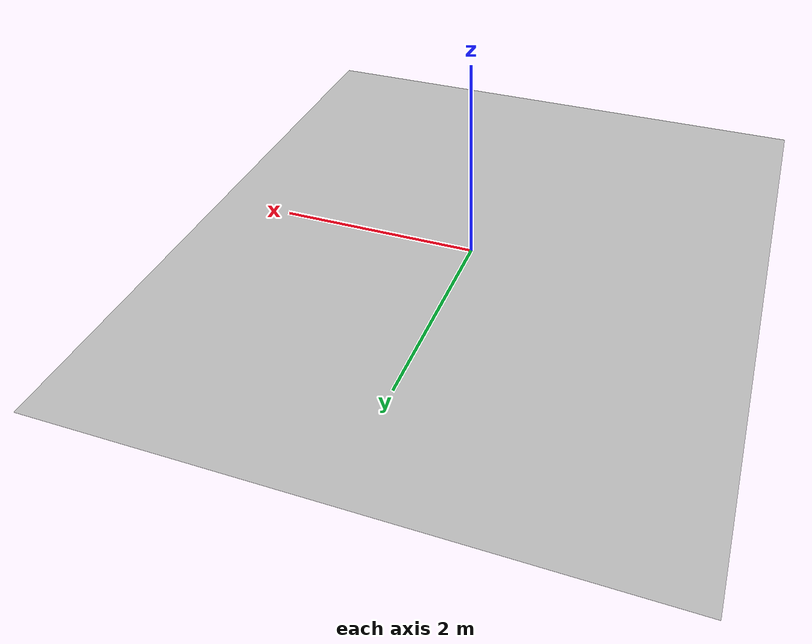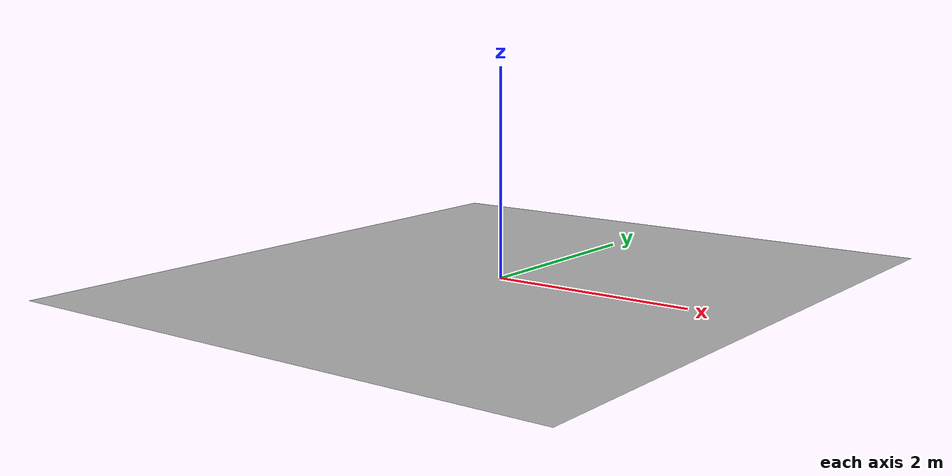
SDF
<?xml version="1.0" ?>
<sdf version="1.8">
  <model name="TrackMap">
    <static>true</static>
    <link name="TrackMap">
      <visual name="visual">
        <geometry>
          <mesh>
            <uri>model://YahboomTrack/TrackMap/meshes/TrackMap.dae</uri>
            <scale>2.0 2.0 2.0</scale>
          </mesh>
        </geometry>
      </visual>
      <collision name="visual">
        <geometry>
          <mesh>
            <uri>model://YahboomTrack/TrackMap/meshes/TrackMap.dae</uri>
            <scale>2.0 2.0 2.0</scale>
          </mesh>
        </geometry>
      </collision>
    </link>
  </model>
</sdf>
